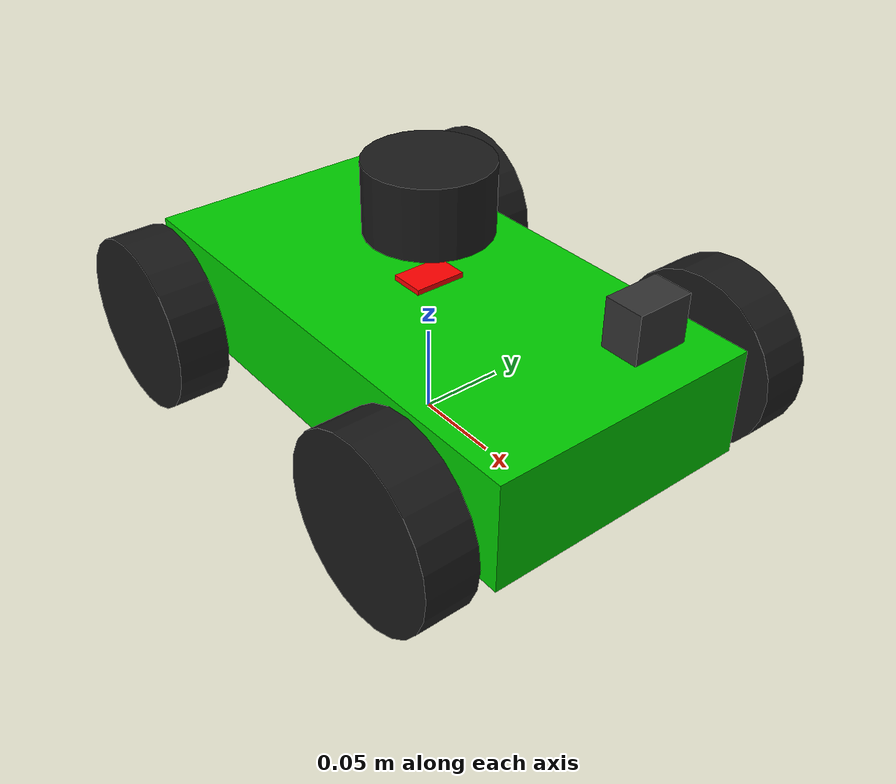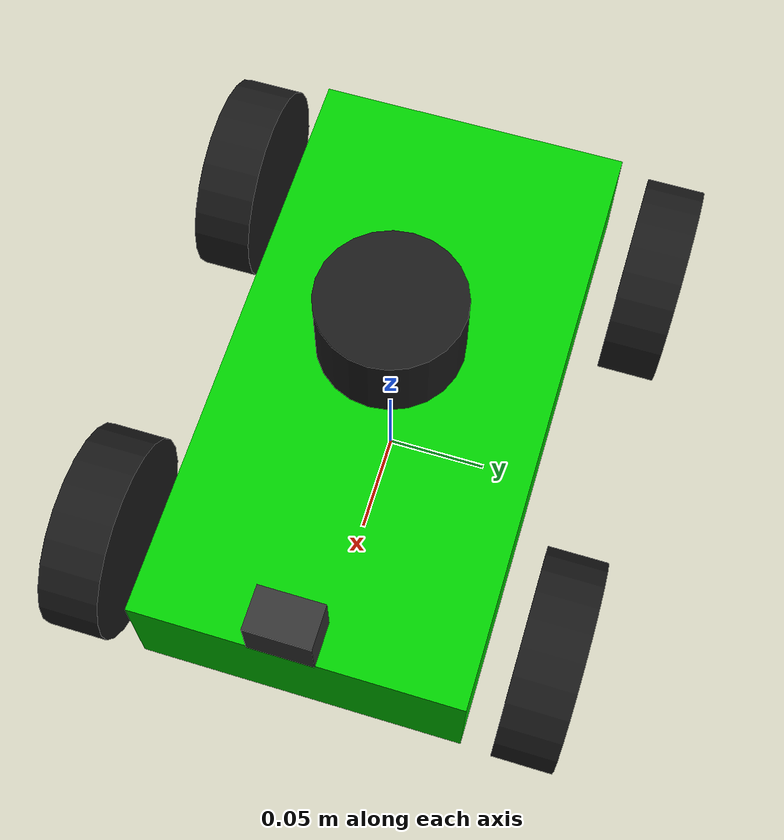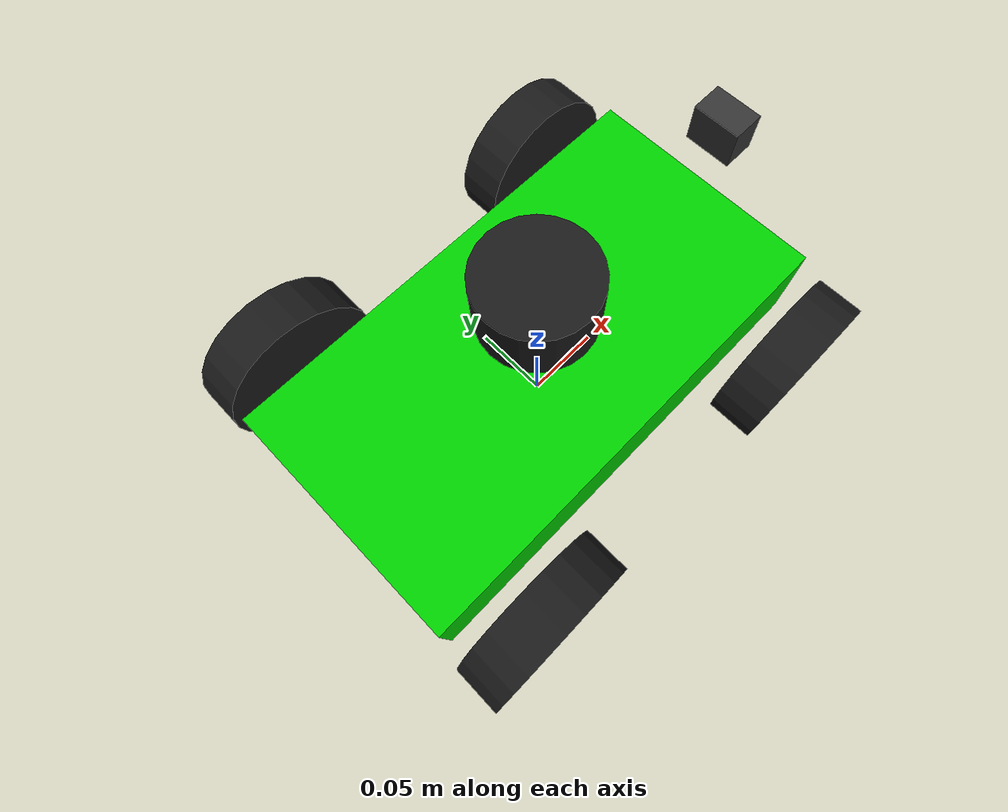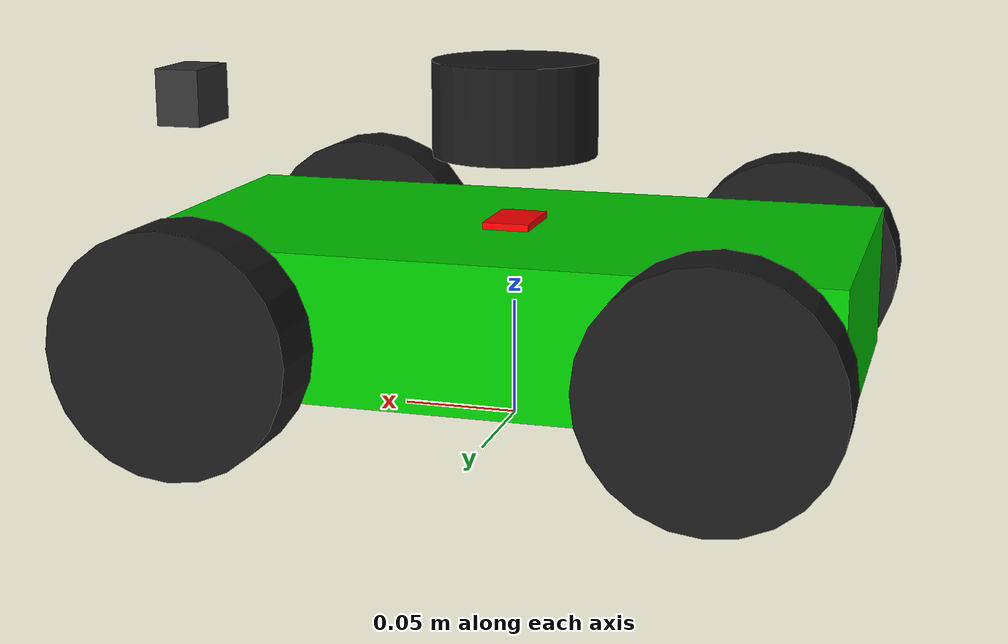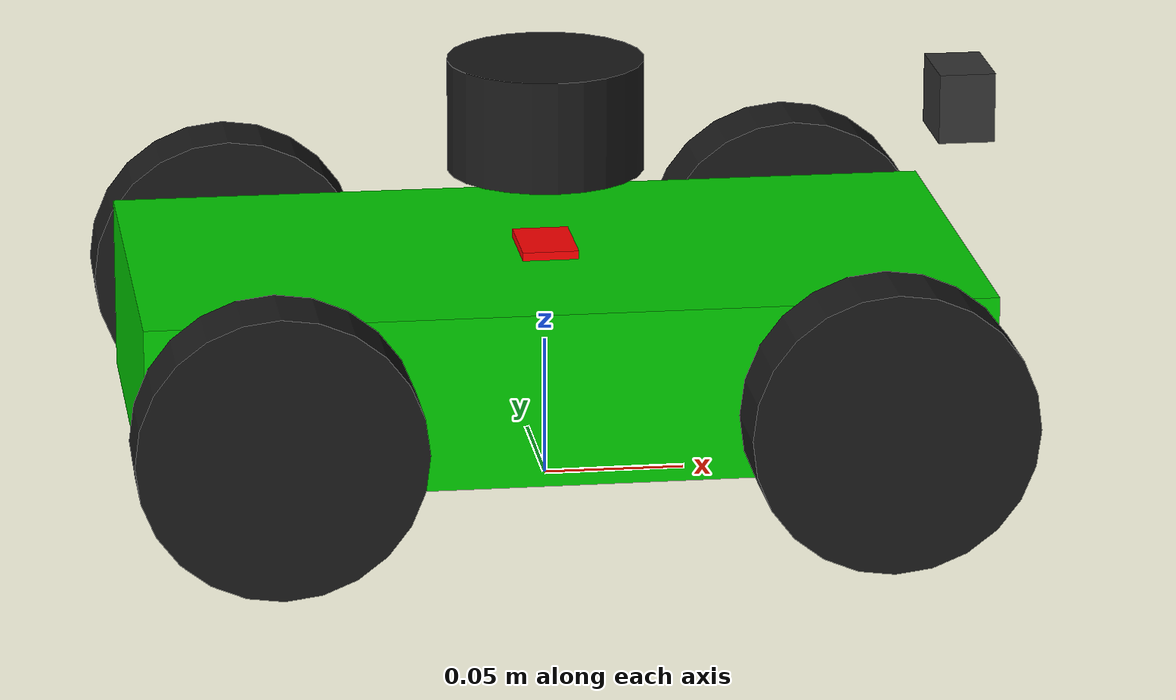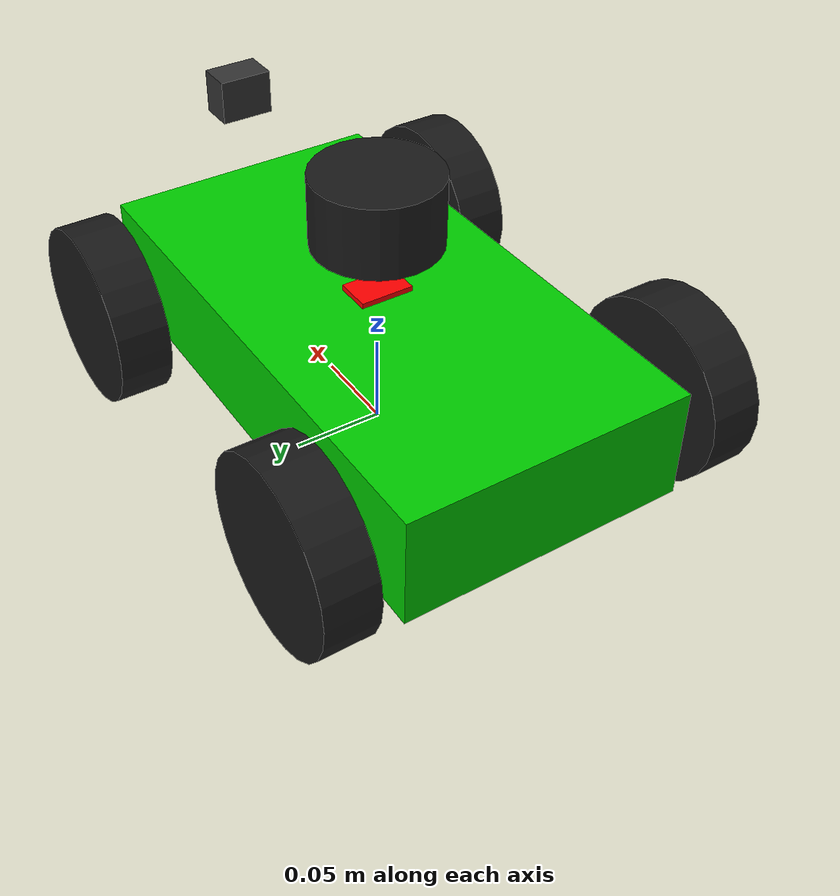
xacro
<?xml version="1.0"?>
<robot xmlns:xacro="http://www.ros.org/wiki/xacro"  name="dvt_robot">

    <!-- sim_mode=true -> Gazebo (gz_ros2_control + sensor plugins)
         sim_mode=false -> real robot (main_bot_hardware/RealRobotSystem, no Gazebo sensor plugins) -->
    <xacro:arg name="sim_mode" default="true"/>

    <xacro:include filename="robot_core.xacro"/>
    <xacro:include filename="lidar.xacro"/>
    <xacro:include filename="camera.xacro"/>
    <xacro:include filename="imu.xacro"/>

    <xacro:if value="$(arg sim_mode)">
        <xacro:include filename="simulation/ros2_control.xacro"/>
    </xacro:if>
    <xacro:unless value="$(arg sim_mode)">
        <xacro:include filename="practical/ros2_control.xacro"/>
    </xacro:unless>

</robot>

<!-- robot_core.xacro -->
<robot name="amr_ackermann" xmlns:xacro="http://www.ros.org/wiki/xacro">

  <xacro:include filename="inertial.xacro"/>

  <!-- ─── Properties ─── -->
  <xacro:property name="chassis_mass"     value="2.0"/>
  <xacro:property name="chassis_length"   value="0.297"/>
  <xacro:property name="chassis_width"    value="0.158"/>
  <xacro:property name="chassis_height"   value="0.062"/>
  <xacro:property name="ground_clearance" value="0.022"/>

  <xacro:property name="wheel_mass"       value="0.15"/>
  <xacro:property name="wheel_radius"     value="0.05"/>
  <xacro:property name="wheel_width"      value="0.029"/>
  <xacro:property name="wheelbase"        value="0.21"/>
  <xacro:property name="track_width"      value="0.217"/>

  <xacro:property name="steering_limit"    value="0.52"/>
  <xacro:property name="steering_effort"   value="10.0"/>
  <xacro:property name="steering_velocity" value="1.0"/>
  <xacro:property name="steer_link_mass"   value="0.01"/>

  <xacro:property name="chassis_z_offset" value="${ground_clearance + chassis_height/2}"/>
  <xacro:property name="wheel_z_offset"   value="${wheel_radius - chassis_z_offset}"/>

  <!-- ─── Materials ─── -->
  <material name="dark_grey">
    <color rgba="0.2 0.2 0.2 1.0"/>
  </material>
  <material name="green">
    <color rgba="0.0 0.8 0.0 1.0"/>
  </material>
  <material name="black">
    <color rgba="0.1 0.1 0.1 1.0"/>
  </material>

  <!-- ─── Rear wheel macro ─── -->
  <xacro:macro name="rear_wheel" params="name y mirrored">
    <link name="${name}_wheel">
      <visual>
        <geometry>
          <cylinder radius="${wheel_radius}" length="${wheel_width}"/>
        </geometry>
        <material name="black"/>
      </visual>
      <collision>
        <geometry>
          <cylinder radius="${wheel_radius}" length="${wheel_width}"/>
        </geometry>
      </collision>
      <xacro:inertial_cylinder mass="${wheel_mass}" radius="${wheel_radius}" length="${wheel_width}">
        <origin xyz="0 0 0" rpy="0 0 0"/>
      </xacro:inertial_cylinder>
    </link>

    <joint name="${name}_wheel_joint" type="continuous">
      <parent link="base_link"/>
      <child  link="${name}_wheel"/>
      <origin xyz="${-wheelbase/2} ${y} ${wheel_z_offset}" rpy="${-pi/2 + pi*mirrored} 0 0"/>
      <axis xyz="0 0 1"/>
    </joint>

    <!-- High friction on drive wheels for traction -->
    <gazebo reference="${name}_wheel">
      <mu>1.5</mu>
      <mu2>1.5</mu2>
      <kp>1e6</kp>
      <kd>1.0</kd>
      <minDepth>0.001</minDepth>
    </gazebo>
  </xacro:macro>

  <!-- ─── Front wheel macro (steer link + steer joint + wheel link + wheel joint) ─── -->
  <xacro:macro name="front_wheel" params="name y mirrored">
    <!-- Steering pivot link (small, virtual) -->
    <link name="front_${name}_steer_link">
      <xacro:inertial_sphere mass="${steer_link_mass}" radius="0.01">
        <origin xyz="0 0 0" rpy="0 0 0"/>
      </xacro:inertial_sphere>
    </link>

    <!-- Steering revolute joint -->
    <joint name="front_${name}_steer_joint" type="revolute">
      <parent link="base_link"/>
      <child  link="front_${name}_steer_link"/>
      <origin xyz="${wheelbase/2} ${y} 0" rpy="0 0 0"/>
      <axis xyz="0 0 1"/>
      <limit lower="${-steering_limit}" upper="${steering_limit}"
             effort="${steering_effort}" velocity="${steering_velocity}"/>
    </joint>

    <!-- Wheel link -->
    <link name="front_${name}_wheel">
      <visual>
        <geometry>
          <cylinder radius="${wheel_radius}" length="${wheel_width}"/>
        </geometry>
        <material name="black"/>
      </visual>
      <collision>
        <geometry>
          <cylinder radius="${wheel_radius}" length="${wheel_width}"/>
        </geometry>
      </collision>
      <xacro:inertial_cylinder mass="${wheel_mass}" radius="${wheel_radius}" length="${wheel_width}">
        <origin xyz="0 0 0" rpy="0 0 0"/>
      </xacro:inertial_cylinder>
    </link>

    <!-- Wheel continuous joint -->
    <joint name="front_${name}_wheel_joint" type="continuous">
      <parent link="front_${name}_steer_link"/>
      <child  link="front_${name}_wheel"/>
      <origin xyz="0 0 ${wheel_z_offset}" rpy="${-pi/2 + pi*mirrored} 0 0"/>
      <axis xyz="0 0 1"/>
    </joint>

    <!-- Lower friction on front wheels: enough to hold heading, not so much it fights steering -->
    <gazebo reference="front_${name}_wheel">
      <mu>1.0</mu>
      <mu2>0.5</mu2>
      <kp>1e6</kp>
      <kd>1.0</kd>
      <minDepth>0.001</minDepth>
    </gazebo>
  </xacro:macro>

  <!-- ─── Links ─── -->
  <link name="base_footprint"/>

  <link name="base_link">
    <visual>
      <geometry>
        <box size="${chassis_length} ${chassis_width} ${chassis_height}"/>
      </geometry>
      <material name="green"/>
    </visual>
    <collision>
      <geometry>
        <box size="${chassis_length} ${chassis_width} ${chassis_height}"/>
      </geometry>
    </collision>
    <xacro:inertial_box mass="${chassis_mass}" x="${chassis_length}" y="${chassis_width}" z="${chassis_height}">
      <origin xyz="0 0 0" rpy="0 0 0"/>
    </xacro:inertial_box>
  </link>

  <gazebo reference="base_link">
    <material>Gazebo/Green</material>
  </gazebo>

  <!-- ─── Joints ─── -->
  <joint name="base_footprint_joint" type="fixed">
    <parent link="base_footprint"/>
    <child  link="base_link"/>
    <origin xyz="0 0 ${chassis_z_offset}" rpy="0 0 0"/>
  </joint>

  <xacro:rear_wheel  name="rear_left"  y="${track_width/2}"  mirrored="0"/>
  <xacro:rear_wheel  name="rear_right" y="${-track_width/2}" mirrored="0"/>
  <xacro:front_wheel name="left"       y="${track_width/2}"  mirrored="0"/>
  <xacro:front_wheel name="right"      y="${-track_width/2}" mirrored="1"/>

</robot>

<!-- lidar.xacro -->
<robot xmlns:xacro="http://www.ros.org/wiki/xacro">

  <!-- ─── Properties ─── -->
  <xacro:property name="lidar_mass"   value="0.17"/>
  <xacro:property name="lidar_radius" value="0.035"/>
  <xacro:property name="lidar_height" value="0.040"/>

  <!-- ─── Links ─── -->
  <link name="lidar_frame">
    <visual>
      <geometry>
        <cylinder radius="${lidar_radius}" length="${lidar_height}"/>
      </geometry>
      <material name="black"/>
    </visual>
    <collision>
      <geometry>
        <cylinder radius="${lidar_radius}" length="${lidar_height}"/>
      </geometry>
    </collision>
    <xacro:inertial_cylinder mass="${lidar_mass}" radius="${lidar_radius}" length="${lidar_height}">
      <origin xyz="0 0 0" rpy="0 0 0"/>
    </xacro:inertial_cylinder>
  </link>

  <!-- ─── Joints ─── -->
  <joint name="laser_joint" type="fixed">
    <parent link="base_link"/>
    <child  link="lidar_frame"/>
    <origin xyz="0 0 ${chassis_height/2 + lidar_height/2 + 0.03}" rpy="0 0 0"/>
  </joint>

  <!-- ─── Gazebo sensor (sim only — real LiDAR uses a driver node, see practical launch) ─── -->
  <xacro:if value="$(arg sim_mode)">
    <gazebo reference="lidar_frame">
      <sensor name="lidar" type="gpu_lidar">
        <pose>0 0 0 0 0 0</pose>
        <topic>scan</topic>
        <update_rate>20</update_rate>
        <always_on>1</always_on>
        <visualize>true</visualize>
        <lidar>
          <scan>
            <horizontal>
              <samples>360</samples>
              <resolution>1</resolution>
              <min_angle>-3.14159</min_angle>
              <max_angle>3.14159</max_angle>
            </horizontal>
            <vertical>
              <samples>1</samples>
              <resolution>0.1</resolution>
              <min_angle>0.</min_angle>
              <max_angle>0.</max_angle>
            </vertical>
          </scan>
          <range>
            <!-- min=0.15m excludes robot self-detection (~0.12m); max=4.0m
                 leaves headroom above front_detect_range (up to 3.5m). -->
            <min>0.15</min>
            <max>4.0</max>
            <resolution>0.01</resolution>
          </range>
          <noise>
            <type>gaussian</type>
            <mean>0.0</mean>
            <stddev>0.01</stddev>
          </noise>
        </lidar>
        <gz_frame_id>lidar_frame</gz_frame_id>
      </sensor>
    </gazebo>

    <gazebo>
      <plugin filename="gz-sim-sensors-system"
              name="gz::sim::systems::Sensors">
        <render_engine>ogre2</render_engine>
      </plugin>
    </gazebo>
  </xacro:if>

</robot>

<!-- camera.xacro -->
<robot xmlns:xacro="http://www.ros.org/wiki/xacro">

  <!-- ─── Camera dimensions ─── -->
  <xacro:property name="cam_size_x"  value="0.020"/>  <!-- depth (X, viewing axis) -->
  <xacro:property name="cam_size_y"  value="0.030"/>  <!-- width -->
  <xacro:property name="cam_size_z"  value="0.025"/>  <!-- height -->
  <xacro:property name="cam_mass"    value="0.050"/>

  <!-- Relative to base_link: front face of the chassis (X), centered (Y),
       5cm above the chassis top face (Z). chassis_length/height come from
       robot_core.xacro. -->
  <xacro:property name="cam_x" value="${chassis_length / 2}"/>
  <xacro:property name="cam_y" value="0"/>
  <xacro:property name="cam_z" value="${chassis_height / 2 + 0.05}"/>

  <!-- ─── camera_link ─── -->
  <link name="camera_link">
    <visual>
      <geometry>
        <box size="${cam_size_x} ${cam_size_y} ${cam_size_z}"/>
      </geometry>
      <material name="dark_grey"/>
    </visual>
    <collision>
      <geometry>
        <box size="${cam_size_x} ${cam_size_y} ${cam_size_z}"/>
      </geometry>
    </collision>
    <xacro:inertial_box mass="${cam_mass}"
                        x="${cam_size_x}" y="${cam_size_y}" z="${cam_size_z}">
      <origin xyz="0 0 0" rpy="0 0 0"/>
    </xacro:inertial_box>
  </link>

  <!-- base_link → camera_link -->
  <joint name="camera_joint" type="fixed">
    <parent link="base_link"/>
    <child  link="camera_link"/>
    <origin xyz="${cam_x} ${cam_y} ${cam_z}" rpy="0 0 0"/>
  </joint>

  <!-- Optical frame: rotates from the robot frame (X=forward, Y=left, Z=up)
       to the standard ROS optical frame (Z=forward, X=right, Y=down). -->
  <link name="camera_link_optical"/>

  <joint name="camera_optical_joint" type="fixed">
    <parent link="camera_link"/>
    <child  link="camera_link_optical"/>
    <origin xyz="0 0 0" rpy="${-pi/2} 0 ${-pi/2}"/>
  </joint>

  <!-- ─── Gazebo Harmonic sensor (sim only — real camera uses a driver node, see practical launch) ─── -->
  <xacro:if value="$(arg sim_mode)">
    <gazebo reference="camera_link">
      <sensor name="camera" type="camera">
        <always_on>true</always_on>
        <visualize>true</visualize>
        <update_rate>10</update_rate>
        <topic>/camera</topic>
        <camera name="camera">
          <horizontal_fov>2.094</horizontal_fov>   <!-- 120° FOV -->
          <image>
            <width>640</width>
            <height>480</height>
            <format>R8G8B8</format>
          </image>
          <clip>
            <near>0.05</near>
            <far>8.0</far>
          </clip>
          <optical_frame_id>camera_link_optical</optical_frame_id>
        </camera>
      </sensor>
    </gazebo>
  </xacro:if>

</robot>

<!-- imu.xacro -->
<robot xmlns:xacro="http://www.ros.org/wiki/xacro">

  <!-- ─── IMU dimensions ─── -->
  <!-- length (0.030m) along Y, width (0.020m) along X, thickness (0.003m) along Z -->
  <xacro:property name="imu_length"    value="0.030"/>
  <xacro:property name="imu_width"     value="0.020"/>
  <xacro:property name="imu_thickness" value="0.003"/>

  <!-- ─── Material ─── -->
  <material name="red">
    <color rgba="1.0 0.0 0.0 1.0"/>
  </material>

  <!-- ─── Link ─── -->
  <link name="imu_link">
    <visual>
      <geometry>
        <!-- size: X=width(0.02), Y=length(0.03), Z=thickness(0.003) -->
        <box size="${imu_width} ${imu_length} ${imu_thickness}"/>
      </geometry>
      <material name="red"/>
    </visual>
    <collision>
      <geometry>
        <box size="${imu_width} ${imu_length} ${imu_thickness}"/>
      </geometry>
    </collision>
    <inertial>
      <origin xyz="0 0 0" rpy="0 0 0"/>
      <mass value="0.001"/>
      <inertia ixx="1e-6" ixy="0" ixz="0" iyy="1e-6" iyz="0" izz="1e-6"/>
    </inertial>
  </link>

  <!-- ─── Joint: mounted at the center of the chassis top face ─── -->
  <joint name="imu_joint" type="fixed">
    <parent link="base_link"/>
    <child  link="imu_link"/>
    <origin xyz="0 0 ${chassis_height/2 + imu_thickness/2}" rpy="0 0 0"/>
  </joint>

  <!-- ─── Gazebo sensor (sim only — real IMU is read by the ESP32 and published over
       micro-ROS as /imu, see mcu_agent/README.md) ─── -->
  <xacro:if value="$(arg sim_mode)">
    <gazebo reference="imu_link">
      <material>Gazebo/Red</material>
      <sensor name="imu_sensor" type="imu">
        <always_on>1</always_on>
        <update_rate>100</update_rate>
        <visualize>true</visualize>
        <topic>imu</topic>
        <gz_frame_id>imu_link</gz_frame_id>
        <imu>
          <angular_velocity>
            <x><noise type="gaussian"><mean>0.0</mean><stddev>0.002</stddev></noise></x>
            <y><noise type="gaussian"><mean>0.0</mean><stddev>0.002</stddev></noise></y>
            <z><noise type="gaussian"><mean>0.0</mean><stddev>0.002</stddev></noise></z>
          </angular_velocity>
          <linear_acceleration>
            <x><noise type="gaussian"><mean>0.0</mean><stddev>0.017</stddev></noise></x>
            <y><noise type="gaussian"><mean>0.0</mean><stddev>0.017</stddev></noise></y>
            <z><noise type="gaussian"><mean>0.0</mean><stddev>0.017</stddev></noise></z>
          </linear_acceleration>
        </imu>
      </sensor>
    </gazebo>
  </xacro:if>

</robot>
